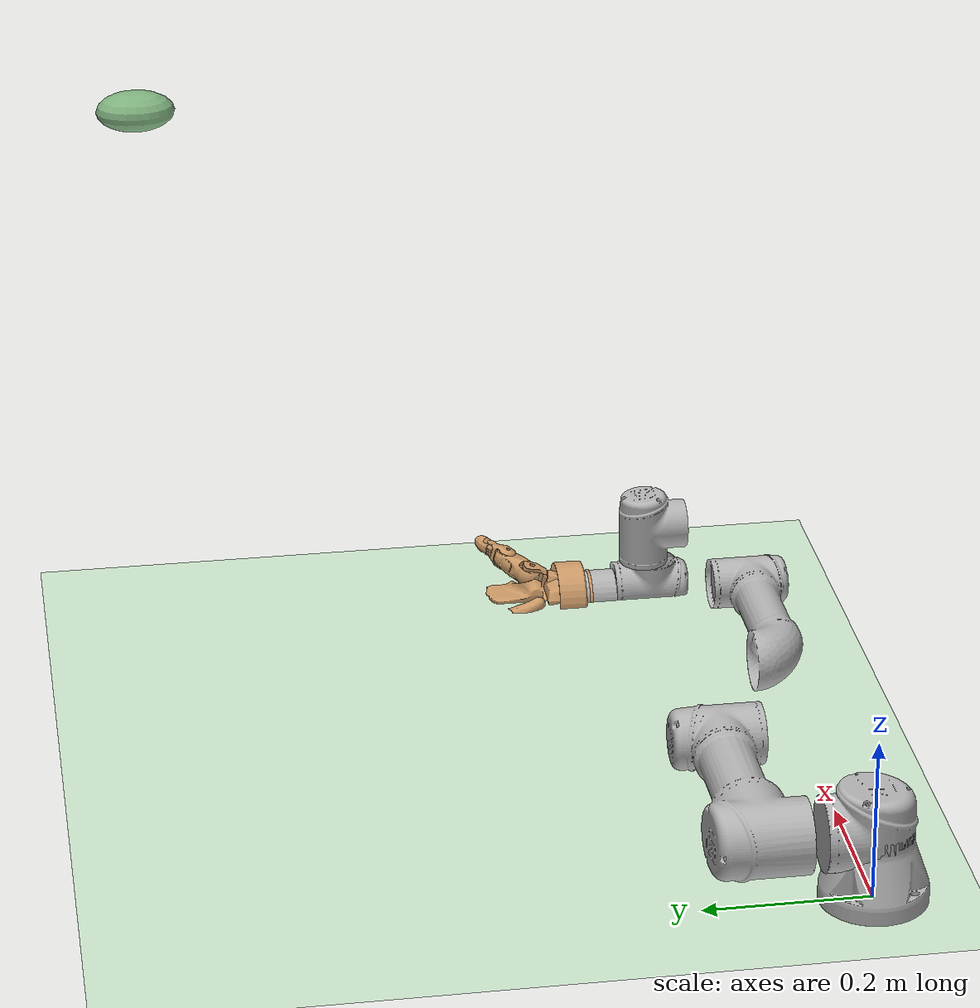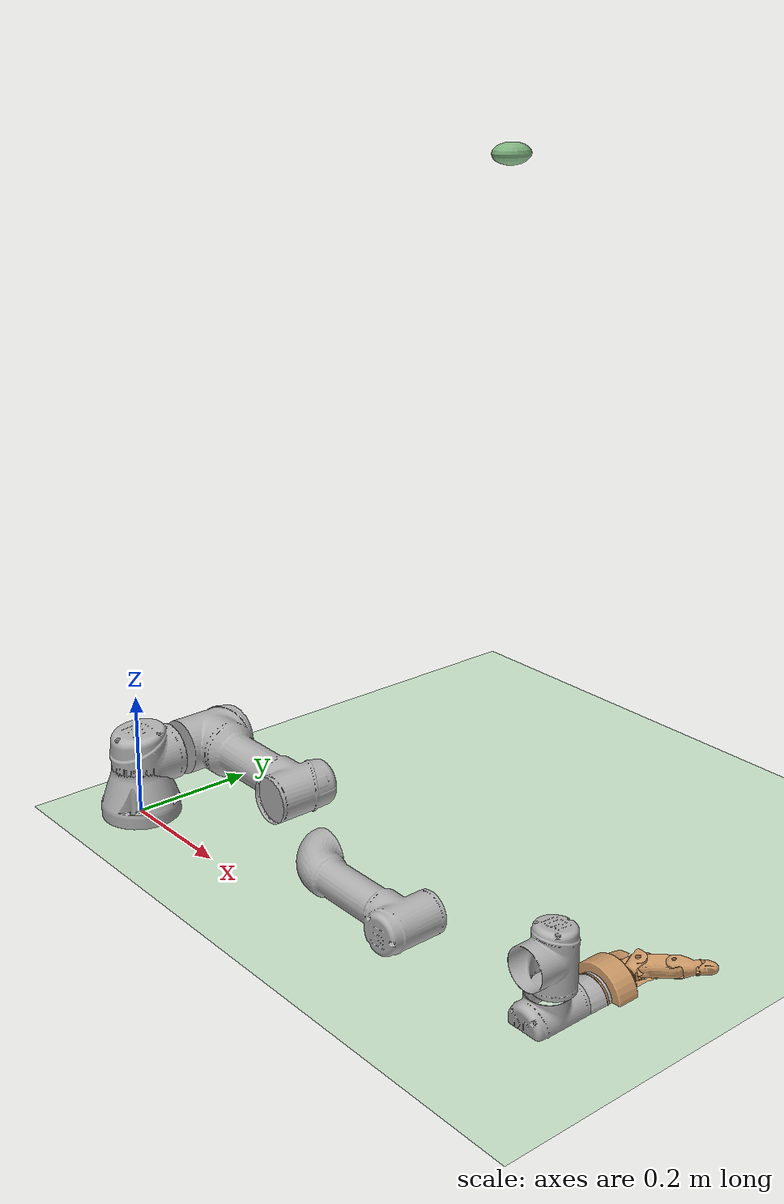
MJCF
<mujoco model="svh">
  <compiler angle="radian" coordinate="local" inertiafromgeom="true" meshdir="/home/francisco/catkin_ws/src/mujoco_ur5_svh_coupled/meshes/"/>
  <option integrator="RK4" timestep="0.001" collision= "all"/>
  <size njmax="500" nconmax="100"/>
  <default>
        <joint armature="1" damping="1" limited="true"/>
        <geom conaffinity="0" condim="3" density="5.0" friction="1 0.5 0.5" margin="0.01" rgba="0.8 0.6 0.4 1"/>
    </default>
  <asset>
  	<texture builtin="gradient" height="100" rgb1="1 1 1" rgb2="0 0 0" type="skybox" width="100"/>
    <texture builtin="flat" height="1278" mark="cross" markrgb="1 1 1" name="texgeom" random="0.01" rgb1="0.8 0.6 0.4" rgb2="0.8 0.6 0.4" type="cube" width="127"/>
    <texture builtin="flat" height="100" name="texplane" rgb1="0.54 0.23 0"  type="2d" width="100"/>
    <material name="MatPlane" reflectance="0" shininess="0.5" specular="1" texrepeat="60 60" texture="texplane"/>
    <material name="geom" texture="texgeom" texuniform="true"/>
    <mesh name="base" file="base.stl"/>
    <mesh name="shoulder" file="shoulder.stl"/>
    <mesh name="upperarm" file="upperarm.stl"/>
    <mesh name="forearm" file="forearm.stl"/>
    <mesh name="wrist1" file="wrist1.stl"/>
    <mesh name="wrist2" file="wrist2.stl"/>
    <mesh name="wrist3" file="wrist3.stl"/>
    <mesh name="base10" file="base10.stl"/>
    <mesh name="h10" file="h10.stl"/>
    <mesh name="h11" file="h11.stl"/>
    <mesh name="d10" file="d10.stl"/>
    <mesh name="d11" file="d11.stl"/>
    <mesh name="d12" file="d12.stl"/>
    <mesh name="d13" file="d13.stl"/>
    <mesh name="f10" file="f10.stl"/>
    <mesh name="f11" file="f11.stl"/>
    <mesh name="f12" file="f12.stl"/>
    <mesh name="f13" file="f13.stl"/>
    <mesh name="f20" file="f20.stl"/>
    <mesh name="f21" file="f21.stl"/>
    <mesh name="f22" file="f22.stl"/>
    <mesh name="f23" file="f23.stl"/>
    <mesh name="f30" file="f30.stl"/>
    <mesh name="f31" file="f31.stl"/>
    <mesh name="f32" file="f32.stl"/>
    <mesh name="f33" file="f33.stl"/>
    <mesh name="f40" file="f40.stl"/>
    <mesh name="f41" file="f41.stl"/>
    <mesh name="f42" file="f42.stl"/>
    <mesh name="f43" file="f43.stl"/>
  </asset>
  <worldbody>
    <light cutoff="100" diffuse="1 1 1" dir="-0 0 -1.3" directional="true" exponent="1" pos="0 0 1.3" specular=".1 .1 .1"/>
    <geom conaffinity="1" condim="4" material="MatPlane" name="floor" pos="0 0 0" rgba="0.8 0.9 0.8 1" size="1 1 1" type="plane"/>

    <geom type="mesh" contype="0" conaffinity="0" group="1" density="0" rgba="0.7 0.7 0.7 1" mesh="base"/>
    <geom type="mesh" rgba="0.7 0.7 0.7 1" mesh="base"/>
    <body name="shoulder_link" pos="0 0 0.089159">
      <inertial pos="0 0 0" mass="3.7" diaginertia="0.0102675 0.0102675 0.00666"/>
      <joint name="shoulder_pan_joint" pos="0 0 0" axis="0 0 1" limited="true" range="-3.14159 3.14159"/>
      <geom type="mesh" contype="0" conaffinity="0" group="1" density="0" rgba="0.7 0.7 0.7 1" mesh="shoulder"/>
      <geom type="mesh" rgba="0.7 0.7 0.7 1" mesh="shoulder"/>
      <body name="upper_arm_link" pos="0 0.13585 0" quat="0.707107 0 0.707107 0">
        <inertial pos="0 0 0.28" mass="8.393" diaginertia="0.226891 0.226891 0.0151074"/>
        <joint name="shoulder_lift_joint" pos="0 0 0" axis="0 1 0" limited="true" range="-3.14159 3.14159"/>
        <geom type="mesh" contype="0" conaffinity="0" group="1" density="0" rgba="0.7 0.7 0.7 1" mesh="upperarm"/>
        <geom type="mesh" rgba="0.7 0.7 0.7 1" mesh="upperarm"/>
        <body name="forearm_link" pos="0 -0.1197 0.425">
          <inertial pos="0 0 0.196125" mass="2.275" diaginertia="0.0312168 0.0312168 0.004095"/>
          <joint name="elbow_joint" pos="0 0 0" axis="0 1 0" limited="true" range="-3.14159 3.14159"/>
          <geom type="mesh" contype="0" conaffinity="0" group="1" density="0" rgba="0.7 0.7 0.7 1" mesh="forearm"/>
          <geom type="mesh" rgba="0.7 0.7 0.7 1" mesh="forearm"/>
          <body name="wrist_1_link" pos="0 0 0.39225" quat="0.707107 0 0.707107 0">
            <inertial pos="0 0.093 0" mass="1.219" diaginertia="0.0025599 0.0025599 0.0021942"/>
            <joint name="wrist_1_joint" pos="0 0 0" axis="0 1 0" limited="true" range="-3.14159 3.14159"/>
            <geom type="mesh" contype="0" conaffinity="0" group="1" density="0" rgba="0.7 0.7 0.7 1" mesh="wrist1"/>
            <geom type="mesh" rgba="0.7 0.7 0.7 1" mesh="wrist1"/>
            <body name="wrist_2_link" pos="0 0.093 0">
              <inertial pos="0 0 0.09465" mass="1.219" diaginertia="0.0025599 0.0025599 0.0021942"/>
              <joint name="wrist_2_joint" pos="0 0 0" axis="0 0 1" limited="true" range="-3.14159 3.14159"/>
              <geom type="mesh" contype="0" conaffinity="0" group="1" density="0" rgba="0.7 0.7 0.7 1" mesh="wrist2"/>
              <geom type="mesh" rgba="0.7 0.7 0.7 1" mesh="wrist2"/>
              <body name="wrist_3_link" pos="0 0 0.09465">
                <inertial pos="0 0.0813708 0.00263761" quat="0.656611 0.754229 0 0" mass="0.2489" diaginertia="0.6004 0.600398 0.600134"/>
                <joint name="wrist_3_joint" pos="0 0 0" axis="0 1 0" limited="true" range="-3.14159 3.14159"/>
                <geom type="mesh" contype="0" conaffinity="0" group="1" density="0" rgba="0.7 0.7 0.7 1" mesh="wrist3"/>
                <geom type="mesh" rgba="0.7 0.7 0.7 1" mesh="wrist3"/>
                <geom size="0.005 0.005 0.005" pos="0 0.0723 0" quat="0.707107 0 0 0.707107" type="box"/>
                <geom pos="0 0.0823 0" quat="0.707107 -0.707107 0 0" type="mesh" contype="0" conaffinity="0" group="1" density="0" mesh="base10"/>
                <geom pos="0 0.0823 0" quat="0.707107 -0.707107 0 0" type="mesh" mesh="base10"/>
                <geom pos="0 0.1143 0" quat="0.707107 -0.707107 0 0" type="mesh" contype="0" conaffinity="0" group="1" density="0" mesh="h10"/>
                <geom pos="0 0.1143 0" quat="0.707107 -0.707107 0 0" type="mesh" mesh="h10"/>
                <geom pos="-1.27248e-06 0.224301 0.02634" quat="0.707107 -6.81133e-05 0 0.707107" type="mesh" contype="0" conaffinity="0" group="1" density="0" mesh="f20"/>
                <geom pos="-1.27248e-06 0.224301 0.02634" quat="0.707107 -6.81133e-05 0 0.707107" type="mesh" mesh="f20"/>
                <body name="right_hand_z" pos="-0.0169 0.1143 -0.01313" quat="0.430402 -0.560942 0.561029 0.430516">
                  <inertial pos="0 0 0.02298" mass="0.02" diaginertia="0.200011 0.200011 0.2"/>
                  <joint name="right_hand_Thumb_Opposition" pos="0 0 0" axis="0 0 -1" limited="true" range="0 0.9879" damping="0" frictionloss="0"/>
                  <geom pos="0 0 0.02442" type="mesh" contype="0" conaffinity="0" group="1" density="0" mesh="d10"/>
                  <geom pos="0 0 0.02442" type="mesh" mesh="d10"/>
                  <body name="right_hand_a" pos="0 0 0.04596" quat="0.329798 0.625462 0.329771 0.625525">
                    <inertial pos="0 0 0" mass="0.078" diaginertia="0.149822 0.115536 0.115536"/>
                    <joint name="right_hand_Thumb_Flexion" pos="0 0 0" axis="0 0 1" limited="true" range="0 0.9704" damping="0" frictionloss="0"/>
                    <geom type="mesh" contype="0" conaffinity="0" group="1" density="0" mesh="d11"/>
                    <geom type="mesh" mesh="d11"/>
                    <body name="right_hand_b" pos="0.0485 0 0">
                      <inertial pos="0 0 0" mass="0.0325" diaginertia="0.062426 0.0373067 0.0373067"/>
                      <joint name="right_hand_j3" pos="0 0 0" axis="0 0 1" limited="true" range="0 0.98506" damping="0" frictionloss="0"/>
                      <geom type="mesh" contype="0" conaffinity="0" group="1" density="0" mesh="d12"/>
                      <geom type="mesh" mesh="d12"/>
                      <body name="right_hand_c" pos="0.03 0 0">
                        <inertial pos="0 0 0" mass="0.2" diaginertia="0.38416 0.208747 0.208747"/>
                        <joint name="right_hand_j4" pos="0 0 0" axis="0 0 1" limited="true" range="0 1.406" damping="0" frictionloss="0"/>
                        <geom type="mesh" contype="0" conaffinity="0" group="1" density="0" mesh="d13"/>
                        <geom type="mesh" mesh="d13"/>
                      </body>
                    </body>
                  </body>
                </body>
                <body name="right_hand_virtual_l" pos="-0.025 0.2243 0.01313" quat="0.707107 -6.81133e-05 0 0.707107">
                  <inertial pos="0 0 0" mass="0.01" diaginertia="0.1 0.1 0.1"/>
                  <joint name="right_hand_index_spread" pos="0 0 0" axis="0 0 1" limited="true" range="0 0.28833" damping="0" frictionloss="0"/>
                  <geom pos="0 0 0.01321" type="mesh" contype="0" conaffinity="0" group="1" density="0" mesh="f10"/>
                  <geom pos="0 0 0.01321" type="mesh" mesh="f10"/>
                  <body name="right_hand_l" pos="0 0 0" quat="0.707141 -0.707073 0 0">
                    <inertial pos="0 0 0" mass="0.2" diaginertia="0.38416 0.34208 0.34208"/>
                    <joint name="right_hand_Index_Finger_Proximal" pos="0 0 0" axis="0 0 1" limited="true" range="0 0.79849" damping="0" frictionloss="0"/>
                    <geom type="mesh" contype="0" conaffinity="0" group="1" density="0" mesh="f11"/>
                    <geom type="mesh" mesh="f11"/>
                    <body name="right_hand_p" pos="0.04804 0 0">
                      <inertial pos="0 0 0" mass="0.2" diaginertia="0.38416 0.258747 0.258747"/>
                      <joint name="right_hand_Index_Finger_Distal" pos="0 0 0" axis="0 0 1" limited="true" range="0 1.334" damping="0" frictionloss="0"/>
                      <geom type="mesh" contype="0" conaffinity="0" group="1" density="0" mesh="f12"/>
                      <geom type="mesh" mesh="f12"/>
                      <body name="right_hand_t" pos="0.026 0 0">
                        <inertial pos="0 0 0" mass="0.2" diaginertia="0.38416 0.22958 0.22958"/>
                        <joint name="right_hand_j14" pos="0 0 0" axis="0 0 1" limited="true" range="0 1.394" damping="0" frictionloss="0"/>
                        <geom type="mesh" contype="0" conaffinity="0" group="1" density="0" mesh="f13"/>
                        <geom type="mesh" mesh="f13"/>
                        <site name="index_sensor_zone" pos="0.02 0 0" type="sphere" size=" 0.009 0.009 0.09 "/>
                      </body>
                    </body>
                  </body>
                </body>
                <body name="right_hand_k" pos="0 0.2243 0.01313" quat="0.499976 -0.500024 -0.499976 0.500024">
                  <inertial pos="0 0 0" quat="0.5 0.5 0.5 0.5" mass="0.078" diaginertia="0.154536 0.154536 0.149822"/>
                  <joint name="right_hand_Middle_Finger_Proximal" pos="0 0 0" axis="0 0 1" limited="true" range="0 0.79849" damping="0" frictionloss="0"/>
                  <geom type="mesh" contype="0" conaffinity="0" group="1" density="0" mesh="f21"/>
                  <geom type="mesh" mesh="f21"/>
                  <body name="right_hand_o" pos="0.05004 0 0">
                    <inertial pos="0 0 0" mass="0.0325" diaginertia="0.062426 0.0420463 0.0420463"/>
                    <joint name="right_hand_Middle_Finger_Distal" pos="0 0 0" axis="0 0 1" limited="true" range="0 1.334" damping="0" frictionloss="0"/>
                    <geom type="mesh" contype="0" conaffinity="0" group="1" density="0" mesh="f22"/>
                    <geom type="mesh" mesh="f22"/>
                    <body name="right_hand_s" pos="0.032 0 0">
                      <inertial pos="0 0 0" mass="0.0195" diaginertia="0.0374556 0.022384 0.022384"/>
                      <joint name="right_hand_j15" pos="0 0 0" axis="0 0 1" limited="true" range="0 1.334" damping="0" frictionloss="0"/>
                      <geom type="mesh" contype="0" conaffinity="0" group="1" density="0" mesh="f23"/>
                      <geom type="mesh" mesh="f23"/>
                    </body>
                  </body>
                </body>
                <body name="right_hand_e2" pos="0.0184 0.1518 0.00713" quat="0.707107 -0.707107 0 0">
                  <inertial pos="0 -0.0048 0" quat="0.707107 0.707107 0 0" mass="0.05" diaginertia="0.5 0.5 0.5"/>
                  <joint name="right_hand_j5" pos="0 0 0" axis="0 0 1" limited="true" range="0 0.98786" damping="0" frictionloss="0"/>
                  <geom pos="-0.0007 0 -0.01002" type="mesh" contype="0" conaffinity="0" group="1" density="0" mesh="h11"/>
                  <geom pos="-0.0007 0 -0.01002" type="mesh" mesh="h11"/>
                  <body name="right_hand_virtual_i" pos="0.025355 -0.006 0.056" quat="0.500048 -0.5 -0.5 -0.499952">
                    <inertial pos="0 0 0" mass="0.01" diaginertia="0.1 0.1 0.1"/>
                    <joint name="right_hand_Finger_Spread" pos="0 0 0" axis="0 0 1" limited="true" range="0 0.5829" />
                    <geom pos="0 0 -0.01321" type="mesh" contype="0" conaffinity="0" group="1" density="0" mesh="f40"/>
                    <geom pos="0 0 -0.01321" type="mesh" mesh="f40"/>
                    <body name="right_hand_i" pos="0 0 0" quat="0.707141 0.707073 0 0">
                      <inertial pos="0 0 0" quat="0.5 0.5 0.5 0.5" mass="0.078" diaginertia="0.154536 0.154536 0.149822"/>
                      <joint name="right_hand_Pinky" pos="0 0 0" axis="0 0 1" limited="true" range="0 0.98175" damping="0" frictionloss="0"/>
                      <geom type="mesh" contype="0" conaffinity="0" group="1" density="0" mesh="f41"/>
                      <geom type="mesh" mesh="f41"/>
                      <body name="right_hand_m" pos="0.04454 0 0">
                        <inertial pos="0 0 0" mass="0.0325" diaginertia="0.062426 0.0420463 0.0420463"/>
                        <joint name="right_hand_j13" pos="0 0 0" axis="0 0 1" limited="true" range="0 1.334" damping="0" frictionloss="0"/>
                        <geom type="mesh" contype="0" conaffinity="0" group="1" density="0" mesh="f42"/>
                        <geom type="mesh" mesh="f42"/>
                        <body name="right_hand_q" pos="0.022 0 0">
                          <inertial pos="0 0 0" mass="0.0195" diaginertia="0.0374556 0.022384 0.022384"/>
                          <joint name="right_hand_j17" pos="0 0 0" axis="0 0 1" limited="true" range="0 1.3971" damping="0" frictionloss="0"/>
                          <geom type="mesh" contype="0" conaffinity="0" group="1" density="0" mesh="f43"/>
                          <geom type="mesh" mesh="f43"/>
                        </body>
                      </body>
                    </body>
                  </body>
                  <body name="right_hand_virtual_j" pos="0.003855 -0.006 0.0655" quat="0.500048 -0.5 -0.5 -0.499952">
                    <inertial pos="0 0 0" mass="0.01" diaginertia="0.1 0.1 0.1"/>
                    <joint name="right_hand_ring_spread" pos="0 0 0" axis="0 0 1" limited="true" range="0 0.28833" damping="0" frictionloss="0"/>
                    <geom pos="0 0 -0.01321" type="mesh" contype="0" conaffinity="0" group="1" density="0" mesh="f30"/>
                    <geom pos="0 0 -0.01321" type="mesh" mesh="f30"/>
                    <body name="right_hand_j" pos="0 0 0" quat="0.707141 0.707073 0 0">
                      <inertial pos="0 0 0" quat="0.5 0.5 0.5 0.5" mass="0.078" diaginertia="0.154536 0.154536 0.149822"/>
                      <joint name="right_hand_Ring_Finger" pos="0 0 0" axis="0 0 1" limited="true" range="0 0.98175" damping="0" frictionloss="0"/>
                      <geom type="mesh" contype="0" conaffinity="0" group="1" density="0" mesh="f31"/>
                      <geom type="mesh" mesh="f31"/>
                      <body name="right_hand_n" pos="0.05004 0 0">
                        <inertial pos="0 0 0" mass="0.0325" diaginertia="0.062426 0.0420463 0.0420463"/>
                        <joint name="right_hand_j12" pos="0 0 0" axis="0 0 1" limited="true" range="0 1.334" damping="0" frictionloss="0"/>
                        <geom type="mesh" contype="0" conaffinity="0" group="1" density="0" mesh="f32"/>
                        <geom type="mesh" mesh="f32"/>
                        <body name="right_hand_r" pos="0.032 0 0">
                          <inertial pos="0 0 0" mass="0.0195" diaginertia="0.0374556 0.022384 0.022384"/>
                          <joint name="right_hand_j16" pos="0 0 0" axis="0 0 1" limited="true" range="0 1.395" damping="0" frictionloss="0"/>
                          <geom type="mesh" contype="0" conaffinity="0" group="1" density="0" mesh="f33"/>
                          <geom type="mesh" mesh="f33"/>
                        </body>
                      </body>
                    </body>
                  </body>
                </body>
              </body>
            </body>
          </body>
        </body>
      </body>
    </body>
  </worldbody>

  <actuator>

    <motor ctrllimited="true" ctrlrange="-100 100"      name="shoulder_pan_joint"                joint="shoulder_pan_joint"                gear="1"/>
    <motor ctrllimited="true" ctrlrange="-100 100"      name="shoulder_lift_joint"               joint="shoulder_lift_joint"               gear="1"/>
    <motor ctrllimited="true" ctrlrange="-100 100"      name="elbow_joint"                       joint="elbow_joint"                       gear="1"/>
    <motor ctrllimited="true" ctrlrange="-100 100"      name="wrist_1_joint"                     joint="wrist_1_joint"                     gear="1"/>
    <motor ctrllimited="true" ctrlrange="-100 100"      name="wrist_2_joint"                     joint="wrist_2_joint"                     gear="1"/>
    <motor ctrllimited="true" ctrlrange="-100 100"      name="wrist_3_joint"                     joint="wrist_3_joint"                     gear="1"/>
    <motor ctrllimited="true" ctrlrange="-100 100"      name="right_hand_Thumb_Opposition"       joint="right_hand_Thumb_Opposition"       gear="1"/>
    <motor ctrllimited="true" ctrlrange="-100 100"      name="right_hand_Thumb_Flexion"          joint="right_hand_Thumb_Flexion"          gear="1"/>
    <motor ctrllimited="true" ctrlrange="-100 100"      name="right_hand_Index_Finger_Proximal"  joint="right_hand_Index_Finger_Proximal"  gear="1"/>
    <motor ctrllimited="true" ctrlrange="-100 100"      name="right_hand_Index_Finger_Distal"    joint="right_hand_Index_Finger_Distal"    gear="1"/>
    <motor ctrllimited="true" ctrlrange="-100 100"      name="right_hand_Middle_Finger_Distal"   joint="right_hand_Middle_Finger_Distal"   gear="1"/>
    <motor ctrllimited="true" ctrlrange="-100 100"      name="right_hand_Middle_Finger_Proximal" joint="right_hand_Middle_Finger_Proximal" gear="1"/>
    <motor ctrllimited="true" ctrlrange="-100 100"      name="right_hand_Finger_Spread"          joint="right_hand_Finger_Spread"          gear="1"/>
    <motor ctrllimited="true" ctrlrange="-100 100"      name="right_hand_Pinky"                  joint="right_hand_Pinky"                  gear="1"/>
    <motor ctrllimited="true" ctrlrange="-100 100"      name="right_hand_Ring_Finger"            joint="right_hand_Ring_Finger"            gear="1"/>

  </actuator>

  <equality>
  	<joint joint2="right_hand_Thumb_Opposition"     joint1="right_hand_j5" polycoef="0 1 0 0 0" active="true" name="equality_constraint" />
    <joint joint2="right_hand_Thumb_Flexion"        joint1="right_hand_j3" polycoef="0 1.01511 0 0 0" active="true" name="equality_constraint2" />
    <joint joint2="right_hand_Thumb_Flexion"        joint1="right_hand_j4" polycoef="0 1.44889 0 0 0" active="true" name="equality_constraint3" />
    <joint joint2="right_hand_Index_Finger_Distal"  joint1="right_hand_j14" polycoef="0 1.0450 0 0 0" active="true" name="equality_constraint4" />
    <joint joint2="right_hand_Middle_Finger_Distal" joint1="right_hand_j15" polycoef="0 1.0454 0 0 0" active="true" name="equality_constraint5" />
    <joint joint2="right_hand_Ring_Finger"          joint1="right_hand_j12" polycoef="0 1.3588 0 0 0" active="true" name="equality_constraint6" />
    <joint joint2="right_hand_Ring_Finger"          joint1="right_hand_j16" polycoef="0 1.42093 0 0 0" active="true" name="equality_constraint7" />
    <joint joint2="right_hand_Pinky"                joint1="right_hand_j13" polycoef="0 1.35880 0 0 0" active="true" name="equality_constraint8" />
    <joint joint2="right_hand_Pinky"                joint1="right_hand_j17" polycoef="0 1.42307 0 0 0" active="true" name="equality_constraint9" />
    <joint joint2="right_hand_Finger_Spread"        joint1="right_hand_ring_spread" polycoef="0 0.5 0 0 0" active="true" name="equality_constraint10"  />
    <joint joint2="right_hand_Finger_Spread"        joint1="right_hand_index_spread" polycoef="0 0.5 0 0 0" active="true" name="equality_constraint11"/>

  </equality>

  <worldbody>

    <body name="object" pos="0 0.8 1">
      <freejoint/>
      <geom conaffinity="1" type="ellipsoid" size="0.03 0.04 0.02" rgba="0.5 0.7 0.5 1" condim="4" priority="1"
          friction="0.5 0.01 0.003"/>
    </body>
  </worldbody>

  <sensor>
  	<touch name="index_sensor" site="index_sensor_zone"/>
  </sensor>

</mujoco>
